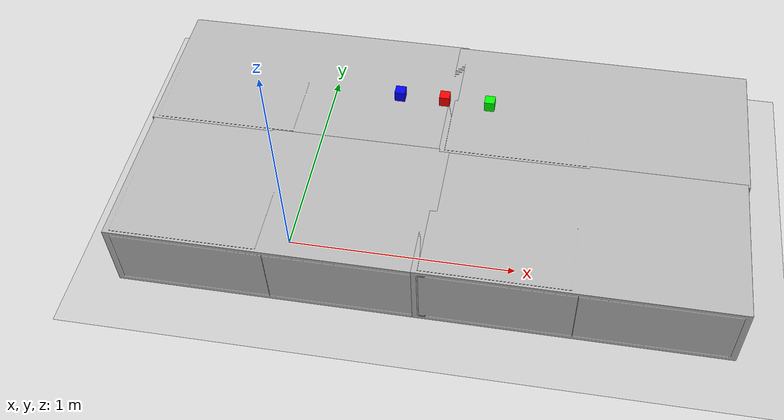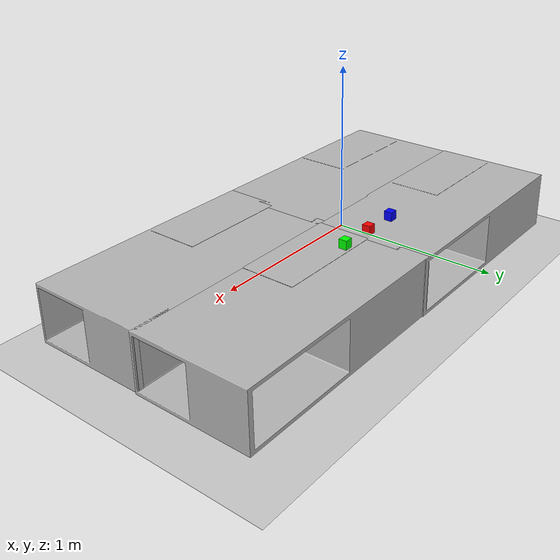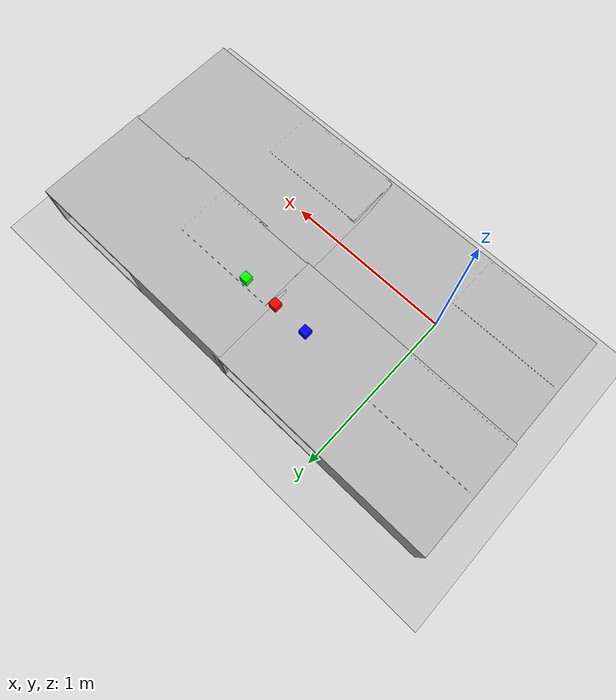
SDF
<sdf version="1.8">
 <world name="empty_world">
  <gravity>0 0 -9.8</gravity>
  <magnetic_field>6e-06 2.3e-05 -4.2e-05</magnetic_field>
  <atmosphere type="adiabatic"/>
  <physics type="ode">
   <max_step_size>0.001</max_step_size>
   <real_time_factor>1</real_time_factor>
   <real_time_update_rate>1000</real_time_update_rate>
  </physics>
  <scene><ambient>0.4 0.4 0.4 1</ambient><background>0.7 0.7 0.7 1</background><shadows>true</shadows></scene>
  <plugin filename="ignition-gazebo-physics-system" name="ignition::gazebo::systems::Physics"/>
  <plugin filename="ignition-gazebo-user-commands-system" name="ignition::gazebo::systems::UserCommands"/>
  <plugin filename="ignition-gazebo-scene-broadcaster-system" name="ignition::gazebo::systems::SceneBroadcaster"/>
  <plugin filename="ignition-gazebo-sensors-system" name="ignition::gazebo::systems::Sensors">
   <render_engine>ogre2</render_engine>
  </plugin>
  <model name="red_box">
   <pose>0.6 0.6 0.395 0 0 0</pose>
   <static>false</static>
   <link name="red_link">
    <inertial>
     <mass>0.04</mass>
     <inertia>
      <ixx>0.000015</ixx>
      <ixy>0</ixy>
      <ixz>0</ixz>
      <iyy>0.000015</iyy>
      <iyz>0</iyz>
      <izz>0.000015</izz>
     </inertia>
    </inertial>
    <collision name="red_collision">
     <geometry><box><size>0.045 0.045 0.05</size></box></geometry>
     <surface>
      <friction><ode><mu>1000.0</mu><mu2>1000.0</mu2></ode></friction>
      <contact>
       <ode><kp>10000000.0</kp><kd>10.0</kd><max_vel>0.0</max_vel><min_depth>0.002</min_depth></ode>
      </contact>
     </surface>
    </collision>
    <visual name="red_visual">
     <geometry><box><size>0.045 0.045 0.05</size></box></geometry>
     <material>
      <ambient>1 0 0 1</ambient>
      <diffuse>1 0 0 1</diffuse>
      <specular>0.3 0.3 0.3 1</specular>
      <emissive>0.2 0 0 1</emissive>
     </material>
    </visual>
   </link>
  </model>
  <model name="green_box">
   <pose>0.8 0.6 0.395 0 0 0</pose>
   <static>false</static>
   <link name="green_link">
    <inertial>
     <mass>0.04</mass>
     <inertia>
      <ixx>0.000015</ixx>
      <ixy>0</ixy>
      <ixz>0</ixz>
      <iyy>0.000015</iyy>
      <iyz>0</iyz>
      <izz>0.000015</izz>
     </inertia>
    </inertial>
    <collision name="green_collision">
     <geometry><box><size>0.045 0.045 0.05</size></box></geometry>
     <surface>
      <friction><ode><mu>1000.0</mu><mu2>1000.0</mu2></ode></friction>
      <contact>
       <ode><kp>10000000.0</kp><kd>10.0</kd><max_vel>0.0</max_vel><min_depth>0.002</min_depth></ode>
      </contact>
     </surface>
    </collision>
    <visual name="green_visual">
     <geometry><box><size>0.045 0.045 0.05</size></box></geometry>
     <material>
      <ambient>0 1 0 1</ambient>
      <diffuse>0 1 0 1</diffuse>
      <specular>0.3 0.3 0.3 1</specular>
      <emissive>0 0.2 0 1</emissive>
     </material>
    </visual>
   </link>
  </model>
  <model name="blue_box">
   <pose>0.4 0.6 0.395 0 0 0</pose>
   <static>false</static>
   <link name="blue_link">
    <inertial>
     <mass>0.04</mass>
     <inertia>
      <ixx>0.000015</ixx>
      <ixy>0</ixy>
      <ixz>0</ixz>
      <iyy>0.000015</iyy>
      <iyz>0</iyz>
      <izz>0.000015</izz>
     </inertia>
    </inertial>
    <collision name="blue_collision">
     <geometry><box><size>0.045 0.045 0.05</size></box></geometry>
     <surface>
      <friction><ode><mu>1000.0</mu><mu2>1000.0</mu2></ode></friction>
      <contact>
       <ode><kp>10000000.0</kp><kd>10.0</kd><max_vel>0.0</max_vel><min_depth>0.002</min_depth></ode>
      </contact>
     </surface>
    </collision>
    <visual name="blue_visual">
     <geometry><box><size>0.045 0.045 0.05</size></box></geometry>
     <material>
      <ambient>0 0 1 1</ambient>
      <diffuse>0 0 1 1</diffuse>
      <specular>0.3 0.3 0.3 1</specular>
      <emissive>0 0 0.2 1</emissive>
     </material>
    </visual>
   </link>
  </model>
  <model name="CoffeeTable_1">
   <static>true</static>
   <model name="aws_robomaker_residential_CoffeeTable_01">
    <link name="link">
     <inertial>
      <mass>21.699999999999999</mass>
      <inertia>
       <ixx>0.81374999999999975</ixx>
       <ixy>0</ixy>
       <ixz>0</ixz>
       <iyy>2.76675</iyy>
       <iyz>0</iyz>
       <izz>3.254</izz>
      </inertia>
     </inertial>
     <collision name="collision">
      <geometry>
       <mesh>
        <uri>model://aws_robomaker_residential_CoffeeTable_01/meshes/aws_CoffeeTable_01_collision.DAE</uri>
        <scale>1 1 1</scale>
       </mesh>
      </geometry>
      <surface><contact><ode><max_vel>0.01</max_vel></ode></contact></surface>
     </collision>
     <visual name="visual">
      <geometry>
       <mesh><uri>model://aws_robomaker_residential_CoffeeTable_01/meshes/aws_CoffeeTable_01_visual.DAE</uri></mesh>
      </geometry>
      <meta><layer>1</layer></meta>
     </visual>
    </link>
    <static>true</static>
   </model>
   <pose>0 0 0.041983 0 -0 0</pose>
  </model>
  <model name="CoffeeTable_2">
   <static>true</static>
   <model name="aws_robomaker_residential_CoffeeTable_01">
    <link name="link">
     <inertial>
      <mass>21.699999999999999</mass>
      <inertia>
       <ixx>0.81374999999999975</ixx>
       <ixy>0</ixy>
       <ixz>0</ixz>
       <iyy>2.76675</iyy>
       <iyz>0</iyz>
       <izz>3.254</izz>
      </inertia>
     </inertial>
     <collision name="collision">
      <geometry>
       <mesh>
        <uri>model://aws_robomaker_residential_CoffeeTable_01/meshes/aws_CoffeeTable_01_collision.DAE</uri>
        <scale>1 1 1</scale>
       </mesh>
      </geometry>
      <surface><contact><ode><max_vel>0.01</max_vel></ode></contact></surface>
     </collision>
     <visual name="visual">
      <geometry>
       <mesh><uri>model://aws_robomaker_residential_CoffeeTable_01/meshes/aws_CoffeeTable_01_visual.DAE</uri></mesh>
      </geometry>
      <meta><layer>1</layer></meta>
     </visual>
    </link>
    <static>true</static>
   </model>
   <pose>1.2577 0 0.041983 0 -0 0</pose>
  </model>
  <model name="CoffeeTable_3">
   <static>true</static>
   <model name="aws_robomaker_residential_CoffeeTable_01">
    <link name="link">
     <inertial>
      <mass>21.699999999999999</mass>
      <inertia>
       <ixx>0.81374999999999975</ixx>
       <ixy>0</ixy>
       <ixz>0</ixz>
       <iyy>2.76675</iyy>
       <iyz>0</iyz>
       <izz>3.254</izz>
      </inertia>
     </inertial>
     <collision name="collision">
      <geometry>
       <mesh>
        <uri>model://aws_robomaker_residential_CoffeeTable_01/meshes/aws_CoffeeTable_01_collision.DAE</uri>
        <scale>1 1 1</scale>
       </mesh>
      </geometry>
      <surface><contact><ode><max_vel>0.01</max_vel></ode></contact></surface>
     </collision>
     <visual name="visual">
      <geometry>
       <mesh><uri>model://aws_robomaker_residential_CoffeeTable_01/meshes/aws_CoffeeTable_01_visual.DAE</uri></mesh>
      </geometry>
      <meta><layer>1</layer></meta>
     </visual>
    </link>
    <static>true</static>
   </model>
   <pose>1.26554 0.637963 0.041983 0 -0 0</pose>
  </model>
  <model name="CoffeeTable_4">
   <static>true</static>
   <model name="aws_robomaker_residential_CoffeeTable_01">
    <link name="link">
     <inertial>
      <mass>21.699999999999999</mass>
      <inertia>
       <ixx>0.81374999999999975</ixx>
       <ixy>0</ixy>
       <ixz>0</ixz>
       <iyy>2.76675</iyy>
       <iyz>0</iyz>
       <izz>3.254</izz>
      </inertia>
     </inertial>
     <collision name="collision">
      <geometry>
       <mesh>
        <uri>model://aws_robomaker_residential_CoffeeTable_01/meshes/aws_CoffeeTable_01_collision.DAE</uri>
        <scale>1 1 1</scale>
       </mesh>
      </geometry>
      <surface><contact><ode><max_vel>0.01</max_vel></ode></contact></surface>
     </collision>
     <visual name="visual">
      <geometry>
       <mesh><uri>model://aws_robomaker_residential_CoffeeTable_01/meshes/aws_CoffeeTable_01_visual.DAE</uri></mesh>
      </geometry>
      <meta><layer>1</layer></meta>
     </visual>
    </link>
    <static>true</static>
   </model>
   <pose>-0.008642 0.643146 0.041983 0 -0 0</pose>
  </model>
  <model name="ground_plane">
   <static>true</static>
   <link name="link">
    <collision name="collision">
     <geometry><plane><normal>0 0 1</normal><size>1 1</size></plane></geometry>
    </collision>
    <visual name="visual">
     <geometry><plane><normal>0 0 1</normal><size>100 100</size></plane></geometry>
     <material>
      <ambient>0.8 0.8 0.8 1</ambient>
      <diffuse>0.8 0.8 0.8 1</diffuse>
      <specular>0.8 0.8 0.8 1</specular>
     </material>
    </visual>
    <inertial>
     <mass>1</mass>
     <inertia><ixx>1</ixx><ixy>0</ixy><ixz>0</ixz><iyy>1</iyy><iyz>0</iyz><izz>1</izz></inertia>
    </inertial>
   </link>
  </model>
  <light name="sun" type="directional">
   <pose>0 0 10 0 -0 0</pose>
   <intensity>1</intensity>
   <direction>-0.5 0.1 -0.9</direction>
   <diffuse>0.8 0.8 0.8 1</diffuse>
   <specular>0.2 0.2 0.2 1</specular>
   <attenuation>
    <range>1000</range>
    <linear>0.01</linear>
    <constant>0.90000000000000002</constant>
    <quadratic>0.001</quadratic>
   </attenuation>
   <spot><inner_angle>0</inner_angle><outer_angle>0</outer_angle><falloff>0</falloff></spot>
  </light>
 </world>
</sdf>
